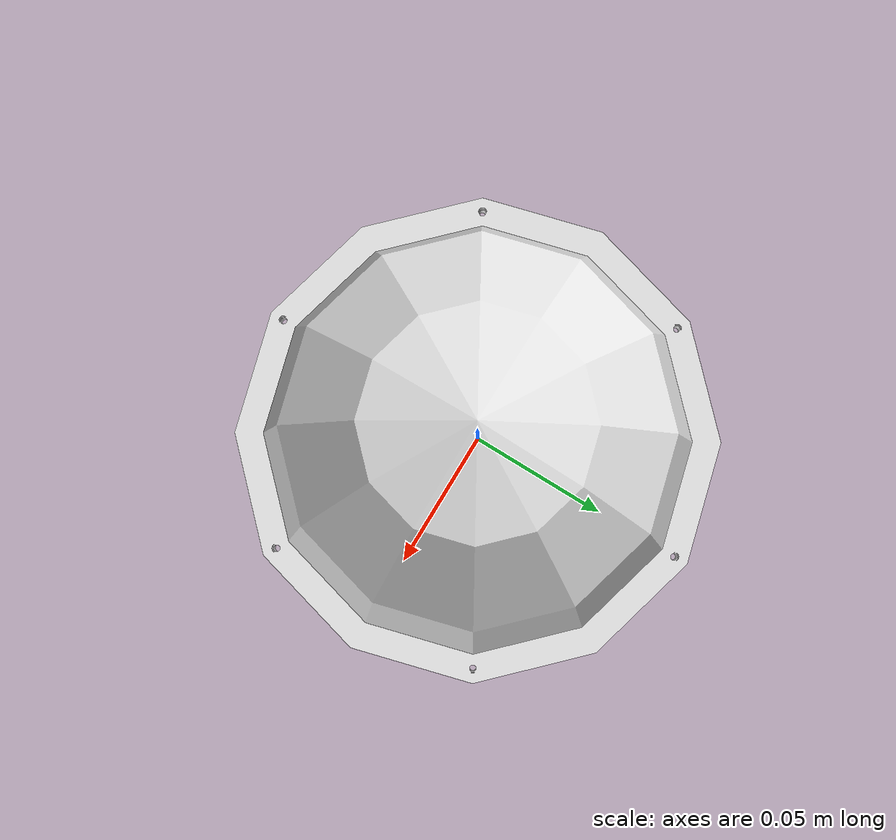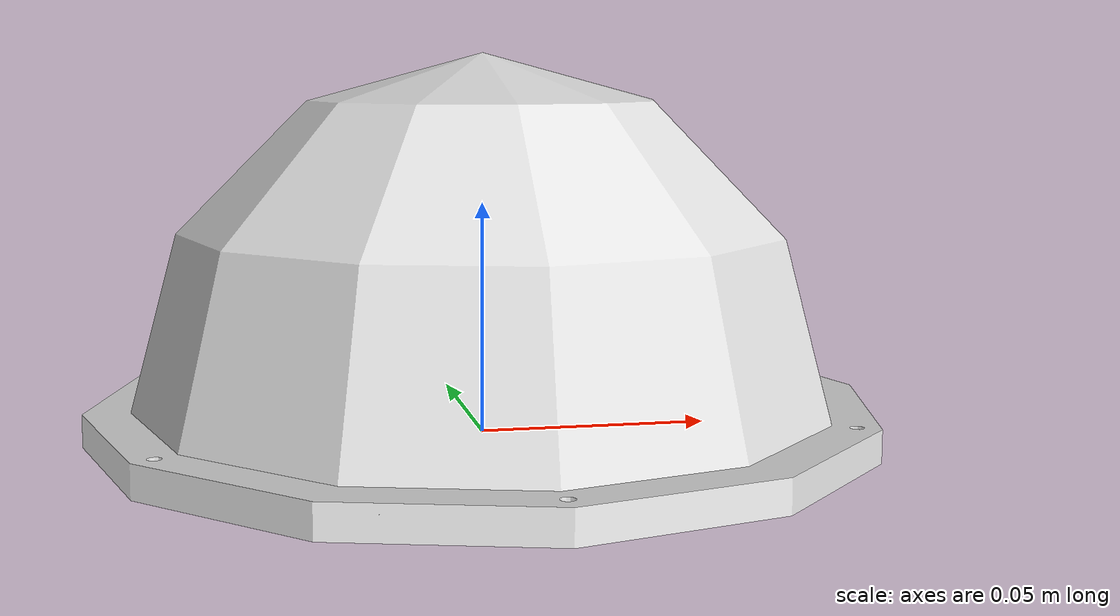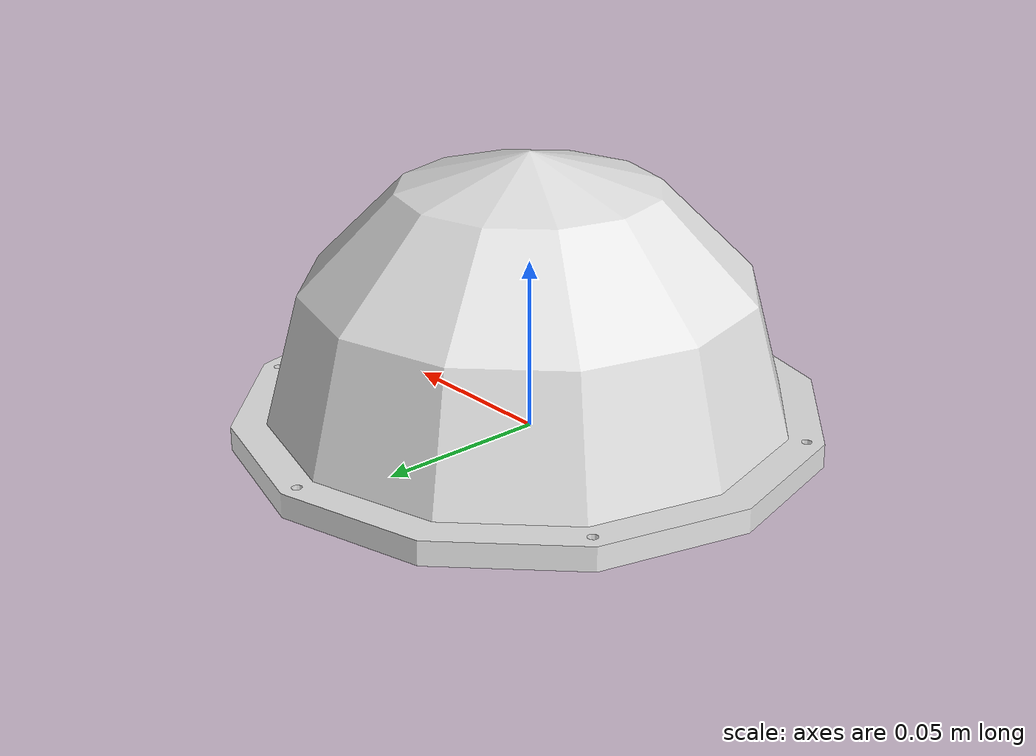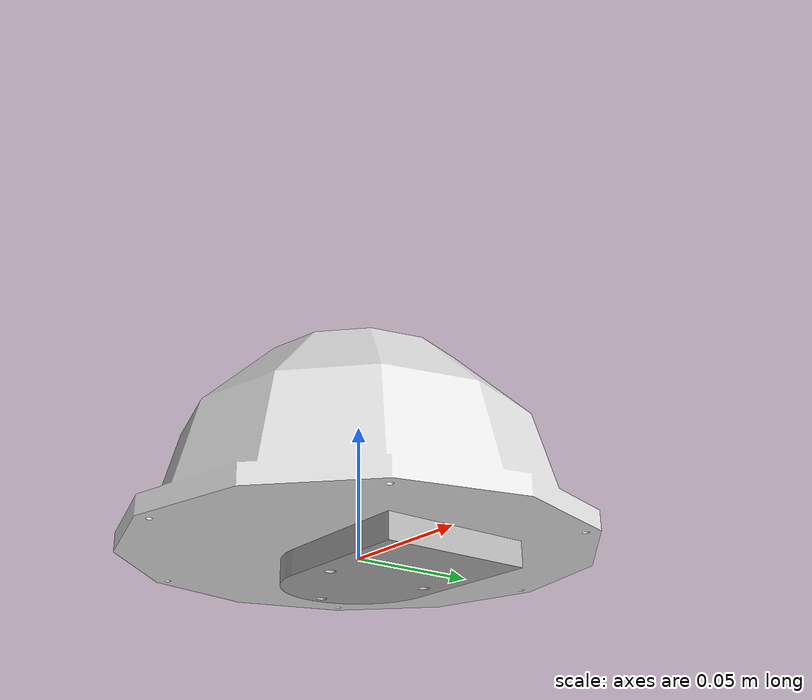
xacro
<?xml version="1.0"?>
<robot name="contact_device" xmlns:xacro="http://www.ros.org/wiki/xacro">

    <joint name="base_joint" type="fixed">
        <origin xyz="0 0 0" rpy="0 0 0" />
        <parent link="base_link" />
        <child link="leptrino" />
    </joint>

    <joint name="contact_joint" type="fixed">
        <origin xyz="0 0 0" rpy="0 0 0" />
        <parent link="leptrino" />
        <child link="contact_link" />
    </joint>

    <link name="base_link" />
    <link name="leptrino">
        <visual>
            <origin xyz="0 0 -0.01" rpy="1.57079 0 0" />
            <geometry>
                <mesh filename="package://leptrino_force_torque/meshes/FFS055YA501U6.stl" />
            </geometry>
            <material name="grey">
                <color rgba="0.7 0.7 0.7 1.0" />
            </material>
        </visual>
    </link>
    <link name="contact_link">
        <visual>
            <origin xyz="0 0 0" rpy="0 0 0" />
            <geometry>
                <mesh filename="package://leptrino_force_torque/meshes/contact_device.stl" />
            </geometry>
            <material name="clear">
                <color rgba="0.9 0.9 0.9 1.0" />
            </material>
        </visual>
    </link>

</robot>
